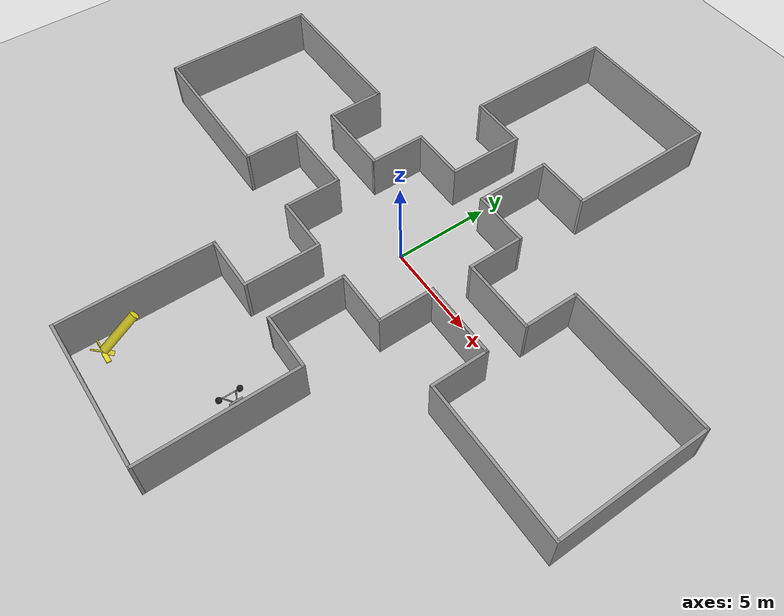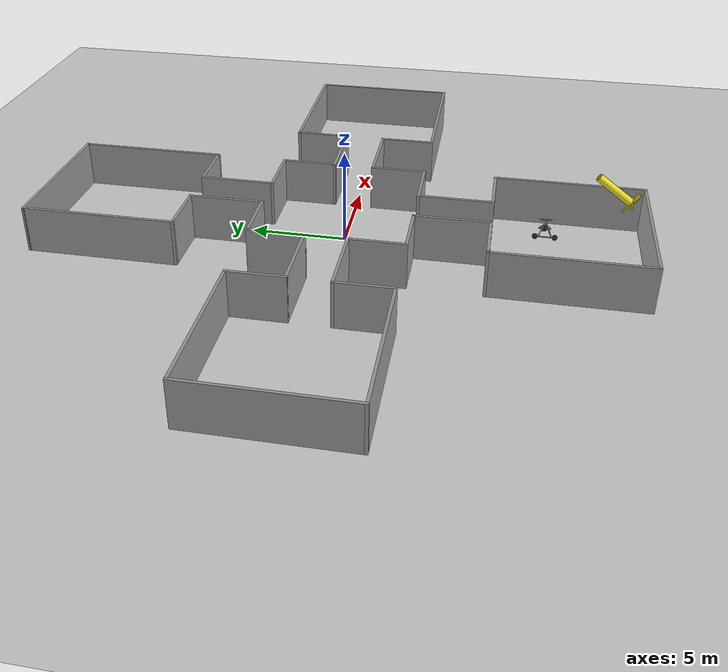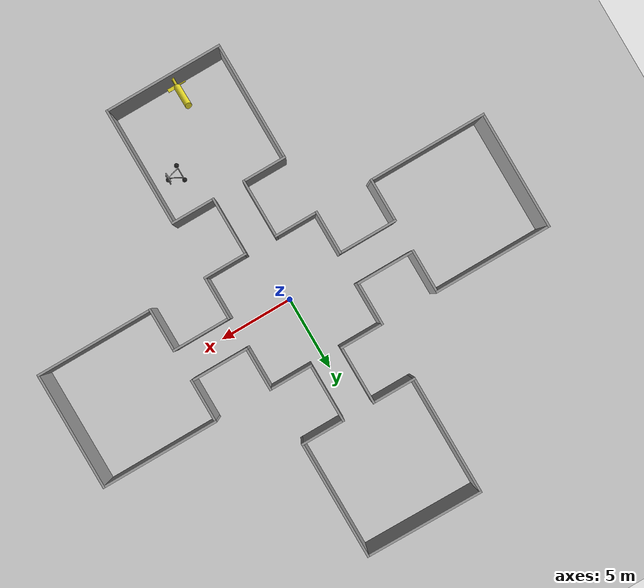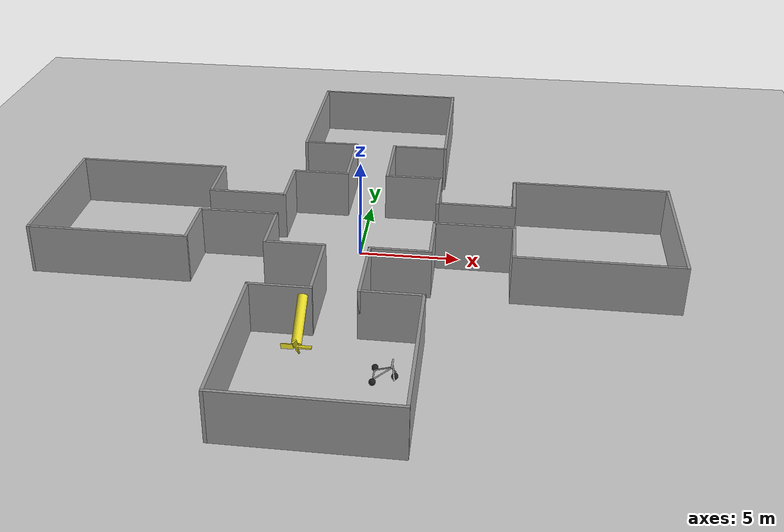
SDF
<sdf version="1.7">
 <world name="default">
  <light name="sun" type="directional">
   <pose>0 0 10 0 -0 0</pose>
   <diffuse>0.8 0.8 0.8 1</diffuse>
   <specular>0.2 0.2 0.2 1</specular>
   <attenuation>
    <range>1000</range>
    <constant>0.9</constant>
    <linear>0.01</linear>
    <quadratic>0.001</quadratic>
   </attenuation>
   <direction>-0.5 0.1 -0.9</direction>
   <spot><inner_angle>0</inner_angle><outer_angle>0</outer_angle><falloff>0</falloff></spot>
  </light>
  <model name="ground_plane">
   <static>1</static>
   <link name="link">
    <collision name="collision">
     <geometry><plane><normal>0 0 1</normal><size>100 100</size></plane></geometry>
     <surface>
      <contact><collide_bitmask>65535</collide_bitmask></contact>
      <friction><ode><mu>100</mu><mu2>50</mu2></ode></friction>
     </surface>
    </collision>
    <visual name="visual">
     <cast_shadows>0</cast_shadows>
     <geometry><plane><normal>0 0 1</normal><size>100 100</size></plane></geometry>
     <material>
      <script><uri>file://media/materials/scripts/gazebo.material</uri><name>Gazebo/Grey</name></script>
     </material>
    </visual>
   </link>
  </model>
  <gravity>0 0 -9.8</gravity>
  <magnetic_field>6e-06 2.3e-05 -4.2e-05</magnetic_field>
  <atmosphere type="adiabatic"/>
  <physics type="ode">
   <max_step_size>0.001</max_step_size>
   <real_time_factor>1</real_time_factor>
   <real_time_update_rate>1000</real_time_update_rate>
  </physics>
  <scene><ambient>0.4 0.4 0.4 1</ambient><background>0.7 0.7 0.7 1</background><shadows>1</shadows></scene>
  <audio><device>default</device></audio>
  <spherical_coordinates>
   <surface_model>EARTH_WGS84</surface_model>
   <latitude_deg>0</latitude_deg>
   <longitude_deg>0</longitude_deg>
   <elevation>0</elevation>
   <heading_deg>0</heading_deg>
  </spherical_coordinates>
  <model name="hallway_house">
   <pose>-0.159329 0.227724 0 0 -0 0</pose>
   <link name="Wall_238">
    <collision name="Wall_238_Collision">
     <geometry><box><size>3 0.15 2.5</size></box></geometry>
     <pose>0 0 1.25 0 -0 0</pose>
    </collision>
    <visual name="Wall_238_Visual">
     <pose>0 0 1.25 0 -0 0</pose>
     <geometry><box><size>3 0.15 2.5</size></box></geometry>
     <material>
      <script><uri>file://media/materials/scripts/gazebo.material</uri><name>Gazebo/Grey</name></script>
      <ambient>1 1 1 1</ambient>
     </material>
     <meta><layer>0</layer></meta>
    </visual>
    <pose>2.5 -3.97159 0 0 -0 3.14159</pose>
   </link>
   <link name="Wall_239">
    <collision name="Wall_239_Collision">
     <geometry><box><size>4 0.15 2.5</size></box></geometry>
     <pose>0 0 1.25 0 -0 0</pose>
    </collision>
    <visual name="Wall_239_Visual">
     <pose>0 0 1.25 0 -0 0</pose>
     <geometry><box><size>4 0.15 2.5</size></box></geometry>
     <material>
      <script><uri>file://media/materials/scripts/gazebo.material</uri><name>Gazebo/Grey</name></script>
      <ambient>1 1 1 1</ambient>
     </material>
     <meta><layer>0</layer></meta>
    </visual>
    <pose>1.075 -5.89658 0 0 -0 -1.5708</pose>
   </link>
   <link name="Wall_240">
    <collision name="Wall_240_Collision">
     <geometry><box><size>3 0.15 2.5</size></box></geometry>
     <pose>0 0 1.25 0 -0 0</pose>
    </collision>
    <visual name="Wall_240_Visual">
     <pose>0 0 1.25 0 -0 0</pose>
     <geometry><box><size>3 0.15 2.5</size></box></geometry>
     <material>
      <script><uri>file://media/materials/scripts/gazebo.material</uri><name>Gazebo/Grey</name></script>
      <ambient>1 1 1 1</ambient>
     </material>
     <meta><layer>0</layer></meta>
    </visual>
    <pose>2.5 -7.82158 0 0 -0 0</pose>
   </link>
   <link name="Wall_241">
    <collision name="Wall_241_Collision">
     <geometry><box><size>8 0.15 2.5</size></box></geometry>
     <pose>0 0 1.25 0 -0 0</pose>
    </collision>
    <visual name="Wall_241_Visual">
     <pose>0 0 1.25 0 -0 0</pose>
     <geometry><box><size>8 0.15 2.5</size></box></geometry>
     <material>
      <script><uri>file://media/materials/scripts/gazebo.material</uri><name>Gazebo/Grey</name></script>
      <ambient>1 1 1 1</ambient>
     </material>
     <meta><layer>0</layer></meta>
    </visual>
    <pose>3.925 -11.7466 0 0 -0 -1.5708</pose>
   </link>
   <link name="Wall_250">
    <collision name="Wall_250_Collision">
     <geometry><box><size>3 0.15 2.5</size></box></geometry>
     <pose>0 0 1.25 0 -0 0</pose>
    </collision>
    <visual name="Wall_250_Visual">
     <pose>0 0 1.25 0 -0 0</pose>
     <geometry><box><size>3 0.15 2.5</size></box></geometry>
     <material>
      <script><uri>file://media/materials/scripts/gazebo.material</uri><name>Gazebo/Grey</name></script>
      <ambient>1 1 1 1</ambient>
     </material>
     <meta><layer>0</layer></meta>
    </visual>
    <pose>3.925 -2.54658 0 0 -0 1.5708</pose>
   </link>
   <link name="Wall_251">
    <collision name="Wall_251_Collision">
     <geometry><box><size>4 0.15 2.5</size></box></geometry>
     <pose>0 0 1.25 0 -0 0</pose>
    </collision>
    <visual name="Wall_251_Visual">
     <pose>0 0 1.25 0 -0 0</pose>
     <geometry><box><size>4 0.15 2.5</size></box></geometry>
     <material>
      <script><uri>file://media/materials/scripts/gazebo.material</uri><name>Gazebo/Grey</name></script>
      <ambient>1 1 1 1</ambient>
     </material>
     <meta><layer>0</layer></meta>
    </visual>
    <pose>5.85 -1.12159 0 0 -0 0</pose>
   </link>
   <link name="Wall_252">
    <collision name="Wall_252_Collision">
     <geometry><box><size>3 0.15 2.5</size></box></geometry>
     <pose>0 0 1.25 0 -0 0</pose>
    </collision>
    <visual name="Wall_252_Visual">
     <pose>0 0 1.25 0 -0 0</pose>
     <geometry><box><size>3 0.15 2.5</size></box></geometry>
     <material>
      <script><uri>file://media/materials/scripts/gazebo.material</uri><name>Gazebo/Grey</name></script>
      <ambient>1 1 1 1</ambient>
     </material>
     <meta><layer>0</layer></meta>
    </visual>
    <pose>7.775 -2.54658 0 0 -0 -1.5708</pose>
   </link>
   <link name="Wall_253">
    <collision name="Wall_253_Collision">
     <geometry><box><size>8 0.15 2.5</size></box></geometry>
     <pose>0 0 1.25 0 -0 0</pose>
    </collision>
    <visual name="Wall_253_Visual">
     <pose>0 0 1.25 0 -0 0</pose>
     <geometry><box><size>8 0.15 2.5</size></box></geometry>
     <material>
      <script><uri>file://media/materials/scripts/gazebo.material</uri><name>Gazebo/Grey</name></script>
      <ambient>1 1 1 1</ambient>
     </material>
     <meta><layer>0</layer></meta>
    </visual>
    <pose>11.7 -3.97159 0 0 -0 0</pose>
   </link>
   <link name="Wall_254">
    <collision name="Wall_254_Collision">
     <geometry><box><size>8 0.15 2.5</size></box></geometry>
     <pose>0 0 1.25 0 -0 0</pose>
    </collision>
    <visual name="Wall_254_Visual">
     <pose>0 0 1.25 0 -0 0</pose>
     <geometry><box><size>8 0.15 2.5</size></box></geometry>
     <material>
      <script><uri>file://media/materials/scripts/gazebo.material</uri><name>Gazebo/Grey</name></script>
      <ambient>1 1 1 1</ambient>
     </material>
     <meta><layer>0</layer></meta>
    </visual>
    <pose>15.625 -0.046585 0 0 -0 1.5708</pose>
   </link>
   <link name="Wall_255">
    <collision name="Wall_255_Collision">
     <geometry><box><size>8 0.15 2.5</size></box></geometry>
     <pose>0 0 1.25 0 -0 0</pose>
    </collision>
    <visual name="Wall_255_Visual">
     <pose>0 0 1.25 0 -0 0</pose>
     <geometry><box><size>8 0.15 2.5</size></box></geometry>
     <material>
      <script><uri>file://media/materials/scripts/gazebo.material</uri><name>Gazebo/Grey</name></script>
      <ambient>1 1 1 1</ambient>
     </material>
     <meta><layer>0</layer></meta>
    </visual>
    <pose>11.7 3.87841 0 0 -0 3.14159</pose>
   </link>
   <link name="Wall_256">
    <collision name="Wall_256_Collision">
     <geometry><box><size>3 0.15 2.5</size></box></geometry>
     <pose>0 0 1.25 0 -0 0</pose>
    </collision>
    <visual name="Wall_256_Visual">
     <pose>0 0 1.25 0 -0 0</pose>
     <geometry><box><size>3 0.15 2.5</size></box></geometry>
     <material>
      <script><uri>file://media/materials/scripts/gazebo.material</uri><name>Gazebo/Grey</name></script>
      <ambient>1 1 1 1</ambient>
     </material>
     <meta><layer>0</layer></meta>
    </visual>
    <pose>7.775 2.45342 0 0 -0 -1.5708</pose>
   </link>
   <link name="Wall_257">
    <collision name="Wall_257_Collision">
     <geometry><box><size>4 0.15 2.5</size></box></geometry>
     <pose>0 0 1.25 0 -0 0</pose>
    </collision>
    <visual name="Wall_257_Visual">
     <pose>0 0 1.25 0 -0 0</pose>
     <geometry><box><size>4 0.15 2.5</size></box></geometry>
     <material>
      <script><uri>file://media/materials/scripts/gazebo.material</uri><name>Gazebo/Grey</name></script>
      <ambient>1 1 1 1</ambient>
     </material>
     <meta><layer>0</layer></meta>
    </visual>
    <pose>5.85 1.02842 0 0 -0 3.14159</pose>
   </link>
   <link name="Wall_258">
    <collision name="Wall_258_Collision">
     <geometry><box><size>3 0.15 2.5</size></box></geometry>
     <pose>0 0 1.25 0 -0 0</pose>
    </collision>
    <visual name="Wall_258_Visual">
     <pose>0 0 1.25 0 -0 0</pose>
     <geometry><box><size>3 0.15 2.5</size></box></geometry>
     <material>
      <script><uri>file://media/materials/scripts/gazebo.material</uri><name>Gazebo/Grey</name></script>
      <ambient>1 1 1 1</ambient>
     </material>
     <meta><layer>0</layer></meta>
    </visual>
    <pose>3.925 2.45342 0 0 -0 1.5708</pose>
   </link>
   <link name="Wall_259">
    <collision name="Wall_259_Collision">
     <geometry><box><size>3 0.15 2.5</size></box></geometry>
     <pose>0 0 1.25 0 -0 0</pose>
    </collision>
    <visual name="Wall_259_Visual">
     <pose>0 0 1.25 0 -0 0</pose>
     <geometry><box><size>3 0.15 2.5</size></box></geometry>
     <material>
      <script><uri>file://media/materials/scripts/gazebo.material</uri><name>Gazebo/Grey</name></script>
      <ambient>1 1 1 1</ambient>
     </material>
     <meta><layer>0</layer></meta>
    </visual>
    <pose>2.5 3.87841 0 0 -0 3.14159</pose>
   </link>
   <link name="Wall_260">
    <collision name="Wall_260_Collision">
     <geometry><box><size>4 0.15 2.5</size></box></geometry>
     <pose>0 0 1.25 0 -0 0</pose>
    </collision>
    <visual name="Wall_260_Visual">
     <pose>0 0 1.25 0 -0 0</pose>
     <geometry><box><size>4 0.15 2.5</size></box></geometry>
     <material>
      <script><uri>file://media/materials/scripts/gazebo.material</uri><name>Gazebo/Grey</name></script>
      <ambient>1 1 1 1</ambient>
     </material>
     <meta><layer>0</layer></meta>
    </visual>
    <pose>1.075 5.80342 0 0 -0 1.5708</pose>
   </link>
   <link name="Wall_261">
    <collision name="Wall_261_Collision">
     <geometry><box><size>3 0.15 2.5</size></box></geometry>
     <pose>0 0 1.25 0 -0 0</pose>
    </collision>
    <visual name="Wall_261_Visual">
     <pose>0 0 1.25 0 -0 0</pose>
     <geometry><box><size>3 0.15 2.5</size></box></geometry>
     <material>
      <script><uri>file://media/materials/scripts/gazebo.material</uri><name>Gazebo/Grey</name></script>
      <ambient>1 1 1 1</ambient>
     </material>
     <meta><layer>0</layer></meta>
    </visual>
    <pose>2.5 7.72842 0 0 -0 0</pose>
   </link>
   <link name="Wall_262">
    <collision name="Wall_262_Collision">
     <geometry><box><size>8 0.15 2.5</size></box></geometry>
     <pose>0 0 1.25 0 -0 0</pose>
    </collision>
    <visual name="Wall_262_Visual">
     <pose>0 0 1.25 0 -0 0</pose>
     <geometry><box><size>8 0.15 2.5</size></box></geometry>
     <material>
      <script><uri>file://media/materials/scripts/gazebo.material</uri><name>Gazebo/Grey</name></script>
      <ambient>1 1 1 1</ambient>
     </material>
     <meta><layer>0</layer></meta>
    </visual>
    <pose>3.925 11.6534 0 0 -0 1.5708</pose>
   </link>
   <link name="Wall_263">
    <collision name="Wall_263_Collision">
     <geometry><box><size>8 0.15 2.5</size></box></geometry>
     <pose>0 0 1.25 0 -0 0</pose>
    </collision>
    <visual name="Wall_263_Visual">
     <pose>0 0 1.25 0 -0 0</pose>
     <geometry><box><size>8 0.15 2.5</size></box></geometry>
     <material>
      <script><uri>file://media/materials/scripts/gazebo.material</uri><name>Gazebo/Grey</name></script>
      <ambient>1 1 1 1</ambient>
     </material>
     <meta><layer>0</layer></meta>
    </visual>
    <pose>0.000271 15.6246 0 0 -0 3.12983</pose>
   </link>
   <link name="Wall_265">
    <collision name="Wall_265_Collision">
     <geometry><box><size>8 0.15 2.5</size></box></geometry>
     <pose>0 0 1.25 0 -0 0</pose>
    </collision>
    <visual name="Wall_265_Visual">
     <pose>0 0 1.25 0 -0 0</pose>
     <geometry><box><size>8 0.15 2.5</size></box></geometry>
     <material>
      <script><uri>file://media/materials/scripts/gazebo.material</uri><name>Gazebo/Grey</name></script>
      <ambient>1 1 1 1</ambient>
     </material>
     <meta><layer>0</layer></meta>
    </visual>
    <pose>0 -15.6716 0 0 -0 3.14159</pose>
   </link>
   <link name="Wall_271">
    <collision name="Wall_271_Collision">
     <geometry><box><size>3 0.15 2.5</size></box></geometry>
     <pose>0 0 1.25 0 -0 0</pose>
    </collision>
    <visual name="Wall_271_Visual">
     <pose>0 0 1.25 0 -0 0</pose>
     <geometry><box><size>3 0.15 2.5</size></box></geometry>
     <material>
      <script><uri>file://media/materials/scripts/gazebo.material</uri><name>Gazebo/Grey</name></script>
      <ambient>1 1 1 1</ambient>
     </material>
     <meta><layer>0</layer></meta>
    </visual>
    <pose>-3.925 -2.54658 0 0 -0 -1.5708</pose>
   </link>
   <link name="Wall_272">
    <collision name="Wall_272_Collision">
     <geometry><box><size>3 0.15 2.5</size></box></geometry>
     <pose>0 0 1.25 0 -0 0</pose>
    </collision>
    <visual name="Wall_272_Visual">
     <pose>0 0 1.25 0 -0 0</pose>
     <geometry><box><size>3 0.15 2.5</size></box></geometry>
     <material>
      <script><uri>file://media/materials/scripts/gazebo.material</uri><name>Gazebo/Grey</name></script>
      <ambient>1 1 1 1</ambient>
     </material>
     <meta><layer>0</layer></meta>
    </visual>
    <pose>-2.5 -3.97159 0 0 -0 0</pose>
   </link>
   <link name="Wall_273">
    <collision name="Wall_273_Collision">
     <geometry><box><size>4 0.15 2.5</size></box></geometry>
     <pose>0 0 1.25 0 -0 0</pose>
    </collision>
    <visual name="Wall_273_Visual">
     <pose>0 0 1.25 0 -0 0</pose>
     <geometry><box><size>4 0.15 2.5</size></box></geometry>
     <material>
      <script><uri>file://media/materials/scripts/gazebo.material</uri><name>Gazebo/Grey</name></script>
      <ambient>1 1 1 1</ambient>
     </material>
     <meta><layer>0</layer></meta>
    </visual>
    <pose>-1.075 -5.89658 0 0 -0 -1.5708</pose>
   </link>
   <link name="Wall_274">
    <collision name="Wall_274_Collision">
     <geometry><box><size>3 0.15 2.5</size></box></geometry>
     <pose>0 0 1.25 0 -0 0</pose>
    </collision>
    <visual name="Wall_274_Visual">
     <pose>0 0 1.25 0 -0 0</pose>
     <geometry><box><size>3 0.15 2.5</size></box></geometry>
     <material>
      <script><uri>file://media/materials/scripts/gazebo.material</uri><name>Gazebo/Grey</name></script>
      <ambient>1 1 1 1</ambient>
     </material>
     <meta><layer>0</layer></meta>
    </visual>
    <pose>-2.5 -7.82158 0 0 -0 3.14159</pose>
   </link>
   <link name="Wall_275">
    <collision name="Wall_275_Collision">
     <geometry><box><size>8 0.15 2.5</size></box></geometry>
     <pose>0 0 1.25 0 -0 0</pose>
    </collision>
    <visual name="Wall_275_Visual">
     <pose>0 0 1.25 0 -0 0</pose>
     <geometry><box><size>8 0.15 2.5</size></box></geometry>
     <material>
      <script><uri>file://media/materials/scripts/gazebo.material</uri><name>Gazebo/Grey</name></script>
      <ambient>1 1 1 1</ambient>
     </material>
     <meta><layer>0</layer></meta>
    </visual>
    <pose>-3.925 -11.7466 0 0 -0 -1.5708</pose>
   </link>
   <link name="Wall_281">
    <collision name="Wall_281_Collision">
     <geometry><box><size>4 0.15 2.5</size></box></geometry>
     <pose>0 0 1.25 0 -0 0</pose>
    </collision>
    <visual name="Wall_281_Visual">
     <pose>0 0 1.25 0 -0 0</pose>
     <geometry><box><size>4 0.15 2.5</size></box></geometry>
     <material>
      <script><uri>file://media/materials/scripts/gazebo.material</uri><name>Gazebo/Grey</name></script>
      <ambient>1 1 1 1</ambient>
     </material>
     <meta><layer>0</layer></meta>
    </visual>
    <pose>-5.85 -1.12159 0 0 -0 3.14159</pose>
   </link>
   <link name="Wall_282">
    <collision name="Wall_282_Collision">
     <geometry><box><size>3 0.15 2.5</size></box></geometry>
     <pose>0 0 1.25 0 -0 0</pose>
    </collision>
    <visual name="Wall_282_Visual">
     <pose>0 0 1.25 0 -0 0</pose>
     <geometry><box><size>3 0.15 2.5</size></box></geometry>
     <material>
      <script><uri>file://media/materials/scripts/gazebo.material</uri><name>Gazebo/Grey</name></script>
      <ambient>1 1 1 1</ambient>
     </material>
     <meta><layer>0</layer></meta>
    </visual>
    <pose>-7.775 -2.54658 0 0 -0 -1.5708</pose>
   </link>
   <link name="Wall_283">
    <collision name="Wall_283_Collision">
     <geometry><box><size>8 0.15 2.5</size></box></geometry>
     <pose>0 0 1.25 0 -0 0</pose>
    </collision>
    <visual name="Wall_283_Visual">
     <pose>0 0 1.25 0 -0 0</pose>
     <geometry><box><size>8 0.15 2.5</size></box></geometry>
     <material>
      <script><uri>file://media/materials/scripts/gazebo.material</uri><name>Gazebo/Grey</name></script>
      <ambient>1 1 1 1</ambient>
     </material>
     <meta><layer>0</layer></meta>
    </visual>
    <pose>-11.7 -3.97159 0 0 -0 3.14159</pose>
   </link>
   <link name="Wall_284">
    <collision name="Wall_284_Collision">
     <geometry><box><size>8 0.15 2.5</size></box></geometry>
     <pose>0 0 1.25 0 -0 0</pose>
    </collision>
    <visual name="Wall_284_Visual">
     <pose>0 0 1.25 0 -0 0</pose>
     <geometry><box><size>8 0.15 2.5</size></box></geometry>
     <material>
      <script><uri>file://media/materials/scripts/gazebo.material</uri><name>Gazebo/Grey</name></script>
      <ambient>1 1 1 1</ambient>
     </material>
     <meta><layer>0</layer></meta>
    </visual>
    <pose>-15.625 -0.046585 0 0 -0 1.5708</pose>
   </link>
   <link name="Wall_285">
    <collision name="Wall_285_Collision">
     <geometry><box><size>8 0.15 2.5</size></box></geometry>
     <pose>0 0 1.25 0 -0 0</pose>
    </collision>
    <visual name="Wall_285_Visual">
     <pose>0 0 1.25 0 -0 0</pose>
     <geometry><box><size>8 0.15 2.5</size></box></geometry>
     <material>
      <script><uri>file://media/materials/scripts/gazebo.material</uri><name>Gazebo/Grey</name></script>
      <ambient>1 1 1 1</ambient>
     </material>
     <meta><layer>0</layer></meta>
    </visual>
    <pose>-11.7 3.87841 0 0 -0 0</pose>
   </link>
   <link name="Wall_286">
    <collision name="Wall_286_Collision">
     <geometry><box><size>3 0.15 2.5</size></box></geometry>
     <pose>0 0 1.25 0 -0 0</pose>
    </collision>
    <visual name="Wall_286_Visual">
     <pose>0 0 1.25 0 -0 0</pose>
     <geometry><box><size>3 0.15 2.5</size></box></geometry>
     <material>
      <script><uri>file://media/materials/scripts/gazebo.material</uri><name>Gazebo/Grey</name></script>
      <ambient>1 1 1 1</ambient>
     </material>
     <meta><layer>0</layer></meta>
    </visual>
    <pose>-7.775 2.45342 0 0 -0 -1.5708</pose>
   </link>
   <link name="Wall_287">
    <collision name="Wall_287_Collision">
     <geometry><box><size>4 0.15 2.5</size></box></geometry>
     <pose>0 0 1.25 0 -0 0</pose>
    </collision>
    <visual name="Wall_287_Visual">
     <pose>0 0 1.25 0 -0 0</pose>
     <geometry><box><size>4 0.15 2.5</size></box></geometry>
     <material>
      <script><uri>file://media/materials/scripts/gazebo.material</uri><name>Gazebo/Grey</name></script>
      <ambient>1 1 1 1</ambient>
     </material>
     <meta><layer>0</layer></meta>
    </visual>
    <pose>-5.85 1.02842 0 0 -0 0</pose>
   </link>
   <link name="Wall_288">
    <collision name="Wall_288_Collision">
     <geometry><box><size>3 0.15 2.5</size></box></geometry>
     <pose>0 0 1.25 0 -0 0</pose>
    </collision>
    <visual name="Wall_288_Visual">
     <pose>0 0 1.25 0 -0 0</pose>
     <geometry><box><size>3 0.15 2.5</size></box></geometry>
     <material>
      <script><uri>file://media/materials/scripts/gazebo.material</uri><name>Gazebo/Grey</name></script>
      <ambient>1 1 1 1</ambient>
     </material>
     <meta><layer>0</layer></meta>
    </visual>
    <pose>-3.925 2.45342 0 0 -0 1.5708</pose>
   </link>
   <link name="Wall_289">
    <collision name="Wall_289_Collision">
     <geometry><box><size>3 0.15 2.5</size></box></geometry>
     <pose>0 0 1.25 0 -0 0</pose>
    </collision>
    <visual name="Wall_289_Visual">
     <pose>0 0 1.25 0 -0 0</pose>
     <geometry><box><size>3 0.15 2.5</size></box></geometry>
     <material>
      <script><uri>file://media/materials/scripts/gazebo.material</uri><name>Gazebo/Grey</name></script>
      <ambient>1 1 1 1</ambient>
     </material>
     <meta><layer>0</layer></meta>
    </visual>
    <pose>-2.5 3.87841 0 0 -0 0</pose>
   </link>
   <link name="Wall_290">
    <collision name="Wall_290_Collision">
     <geometry><box><size>4 0.15 2.5</size></box></geometry>
     <pose>0 0 1.25 0 -0 0</pose>
    </collision>
    <visual name="Wall_290_Visual">
     <pose>0 0 1.25 0 -0 0</pose>
     <geometry><box><size>4 0.15 2.5</size></box></geometry>
     <material>
      <script><uri>file://media/materials/scripts/gazebo.material</uri><name>Gazebo/Grey</name></script>
      <ambient>1 1 1 1</ambient>
     </material>
     <meta><layer>0</layer></meta>
    </visual>
    <pose>-1.075 5.80342 0 0 -0 1.5708</pose>
   </link>
   <link name="Wall_291">
    <collision name="Wall_291_Collision">
     <geometry><box><size>3 0.15 2.5</size></box></geometry>
     <pose>0 0 1.25 0 -0 0</pose>
    </collision>
    <visual name="Wall_291_Visual">
     <pose>0 0 1.25 0 -0 0</pose>
     <geometry><box><size>3 0.15 2.5</size></box></geometry>
     <material>
      <script><uri>file://media/materials/scripts/gazebo.material</uri><name>Gazebo/Grey</name></script>
      <ambient>1 1 1 1</ambient>
     </material>
     <meta><layer>0</layer></meta>
    </visual>
    <pose>-2.5 7.72842 0 0 -0 3.14159</pose>
   </link>
   <link name="Wall_292">
    <collision name="Wall_292_Collision">
     <geometry><box><size>8 0.15 2.5</size></box></geometry>
     <pose>0 0 1.25 0 -0 0</pose>
    </collision>
    <visual name="Wall_292_Visual">
     <pose>0 0 1.25 0 -0 0</pose>
     <geometry><box><size>8 0.15 2.5</size></box></geometry>
     <material>
      <script><uri>file://media/materials/scripts/gazebo.material</uri><name>Gazebo/Grey</name></script>
      <ambient>1 1 1 1</ambient>
     </material>
     <meta><layer>0</layer></meta>
    </visual>
    <pose>-3.925 11.6534 0 0 -0 1.5708</pose>
   </link>
   <static>1</static>
  </model>
  <model name="trisphere_cycle">
   <link name="frame">
    <pose>-0.408559 0 0.385023 0 -0.522021 0</pose>
    <inertial>
     <mass>10</mass>
     <inertia><ixx>0.228</ixx><iyy>0.743521</iyy><izz>0.965521</izz><ixy>0</ixy><ixz>0</ixz><iyz>0</iyz></inertia>
    </inertial>
    <collision name="axle_collision">
     <pose>-0.471335 0 0 1.5708 -0 0</pose>
     <geometry><cylinder><length>1.03923</length><radius>0.03</radius></cylinder></geometry>
    </collision>
    <visual name="axle_visual">
     <pose>-0.471335 0 0 1.5708 -0 0</pose>
     <geometry><cylinder><length>1.03923</length><radius>0.03</radius></cylinder></geometry>
     <material>
      <script><uri>file://media/materials/scripts/gazebo.material</uri><name>Gazebo/Grey</name></script>
     </material>
    </visual>
    <collision name="frame_left_collision">
     <pose>0 0.171552 0 -2.79253 1.57079 3.14159</pose>
     <geometry><cylinder><length>1.00317</length><radius>0.03</radius></cylinder></geometry>
    </collision>
    <visual name="frame_left_visual">
     <pose>0 0.171552 0 -2.79253 1.57079 3.14159</pose>
     <geometry><cylinder><length>1.00317</length><radius>0.03</radius></cylinder></geometry>
     <material>
      <script><uri>file://media/materials/scripts/gazebo.material</uri><name>Gazebo/Grey</name></script>
     </material>
    </visual>
    <collision name="frame_right_collision">
     <pose>0 -0.171552 0 2.79253 1.57079 -3.14159</pose>
     <geometry><cylinder><length>1.00317</length><radius>0.03</radius></cylinder></geometry>
    </collision>
    <visual name="frame_right_visual">
     <pose>0 -0.171552 0 2.79253 1.57079 -3.14159</pose>
     <geometry><cylinder><length>1.00317</length><radius>0.03</radius></cylinder></geometry>
     <material>
      <script><uri>file://media/materials/scripts/gazebo.material</uri><name>Gazebo/Grey</name></script>
     </material>
    </visual>
   </link>
   <link name="fork">
    <pose>0.041441 0 0.385023 0 -0.174533 0</pose>
    <inertial>
     <mass>3</mass>
     <inertia>
      <ixx>0.158203</ixx>
      <iyy>0.0583594</iyy>
      <izz>0.102656</izz>
      <ixy>0</ixy>
      <ixz>0</ixz>
      <iyz>0</iyz>
     </inertia>
    </inertial>
    <collision name="handlebars_collision">
     <pose>0 0 0.397748 1.5708 -0 0</pose>
     <geometry><cylinder><length>0.636396</length><radius>0.0375</radius></cylinder></geometry>
    </collision>
    <visual name="handlebars_visual">
     <pose>0 0 0.397748 1.5708 -0 0</pose>
     <geometry><cylinder><length>0.636396</length><radius>0.0375</radius></cylinder></geometry>
     <material>
      <script><uri>file://media/materials/scripts/gazebo.material</uri><name>Gazebo/Grey</name></script>
     </material>
    </visual>
    <collision name="headtube_collision">
     <pose>0 0 0.238649 0 -0 0</pose>
     <geometry><cylinder><length>0.318198</length><radius>0.0375</radius></cylinder></geometry>
    </collision>
    <visual name="headtube_visual">
     <pose>0 0 0.238649 0 -0 0</pose>
     <geometry><cylinder><length>0.318198</length><radius>0.0375</radius></cylinder></geometry>
     <material>
      <script><uri>file://media/materials/scripts/gazebo.material</uri><name>Gazebo/Grey</name></script>
     </material>
    </visual>
    <collision name="spindle_collision">
     <pose>0 0 -0.238649 1.5708 -0 0</pose>
     <geometry><cylinder><length>0.636396</length><radius>0.015</radius></cylinder></geometry>
    </collision>
    <visual name="spindle_visual">
     <pose>0 0 -0.238649 1.5708 -0 0</pose>
     <geometry><cylinder><length>0.636396</length><radius>0.015</radius></cylinder></geometry>
     <material>
      <script><uri>file://media/materials/scripts/gazebo.material</uri><name>Gazebo/Grey</name></script>
     </material>
    </visual>
    <collision name="fork_left_collision">
     <pose>0 0.159099 -0.07955 0.785398 -0 0</pose>
     <geometry><cylinder><length>0.45</length><radius>0.0375</radius></cylinder></geometry>
    </collision>
    <visual name="fork_left_visual">
     <pose>0 0.159099 -0.07955 0.785398 -0 0</pose>
     <geometry><cylinder><length>0.45</length><radius>0.0375</radius></cylinder></geometry>
     <material>
      <script><uri>file://media/materials/scripts/gazebo.material</uri><name>Gazebo/Grey</name></script>
     </material>
    </visual>
    <collision name="fork_right_collision">
     <pose>0 -0.159099 -0.07955 -0.785398 0 0</pose>
     <geometry><cylinder><length>0.45</length><radius>0.0375</radius></cylinder></geometry>
    </collision>
    <visual name="fork_right_visual">
     <pose>0 -0.159099 -0.07955 -0.785398 0 0</pose>
     <geometry><cylinder><length>0.45</length><radius>0.0375</radius></cylinder></geometry>
     <material>
      <script><uri>file://media/materials/scripts/gazebo.material</uri><name>Gazebo/Grey</name></script>
     </material>
    </visual>
   </link>
   <link name="wheel_front">
    <pose>0.082882 0 0.15 0 -0 0</pose>
    <inertial>
     <mass>0.5</mass>
     <inertia><ixx>0.0045</ixx><iyy>0.0045</iyy><izz>0.0045</izz><ixy>0</ixy><ixz>0</ixz><iyz>0</iyz></inertia>
    </inertial>
    <collision name="collision">
     <geometry><sphere><radius>0.15</radius></sphere></geometry>
     <surface><contact><ode><kp>1e+08</kp><kd>1</kd><min_depth>0.0005</min_depth></ode></contact></surface>
    </collision>
    <visual name="visual">
     <geometry><sphere><radius>0.15</radius></sphere></geometry>
     <material>
      <script><uri>file://media/materials/scripts/gazebo.material</uri><name>Gazebo/Black</name></script>
     </material>
    </visual>
   </link>
   <joint name="wheel_front_steer" type="revolute">
    <parent>frame</parent>
    <child>fork</child>
    <axis>
     <xyz>0 0 1</xyz>
     <limit><lower>-0.959931</lower><upper>0.959931</upper></limit>
     <dynamics><spring_reference>0</spring_reference><spring_stiffness>0</spring_stiffness></dynamics>
    </axis>
   </joint>
   <joint name="wheel_front_spin" type="revolute">
    <parent>fork</parent>
    <child>wheel_front</child>
    <axis>
     <xyz>0 1 0</xyz>
     <limit><lower>-1e+16</lower><upper>1e+16</upper></limit>
     <dynamics><spring_reference>0</spring_reference><spring_stiffness>0</spring_stiffness></dynamics>
    </axis>
   </joint>
   <link name="wheel_rear_left">
    <pose>-0.817118 0.519615 0.15 0 -0 0</pose>
    <inertial>
     <mass>0.5</mass>
     <inertia><ixx>0.0045</ixx><iyy>0.0045</iyy><izz>0.0045</izz><ixy>0</ixy><ixz>0</ixz><iyz>0</iyz></inertia>
    </inertial>
    <collision name="collision">
     <geometry><sphere><radius>0.15</radius></sphere></geometry>
     <surface><contact><ode><kp>1e+08</kp><kd>1</kd><min_depth>0.0005</min_depth></ode></contact></surface>
    </collision>
    <visual name="visual">
     <geometry><sphere><radius>0.15</radius></sphere></geometry>
     <material>
      <script><uri>file://media/materials/scripts/gazebo.material</uri><name>Gazebo/Black</name></script>
     </material>
    </visual>
   </link>
   <joint name="wheel_rear_left_spin" type="revolute">
    <parent>frame</parent>
    <child>wheel_rear_left</child>
    <axis>
     <xyz>0 1 0</xyz>
     <limit><lower>-1e+16</lower><upper>1e+16</upper></limit>
     <dynamics><spring_reference>0</spring_reference><spring_stiffness>0</spring_stiffness></dynamics>
    </axis>
   </joint>
   <link name="wheel_rear_right">
    <pose>-0.817118 -0.519615 0.15 0 -0 0</pose>
    <inertial>
     <mass>0.5</mass>
     <inertia><ixx>0.0045</ixx><iyy>0.0045</iyy><izz>0.0045</izz><ixy>0</ixy><ixz>0</ixz><iyz>0</iyz></inertia>
    </inertial>
    <collision name="collision">
     <geometry><sphere><radius>0.15</radius></sphere></geometry>
     <surface><contact><ode><kp>1e+08</kp><kd>1</kd><min_depth>0.0005</min_depth></ode></contact></surface>
    </collision>
    <visual name="visual">
     <geometry><sphere><radius>0.15</radius></sphere></geometry>
     <material>
      <script><uri>file://media/materials/scripts/gazebo.material</uri><name>Gazebo/Black</name></script>
     </material>
    </visual>
   </link>
   <joint name="wheel_rear_right_spin" type="revolute">
    <parent>frame</parent>
    <child>wheel_rear_right</child>
    <axis>
     <xyz>0 1 0</xyz>
     <limit><lower>-1e+16</lower><upper>1e+16</upper></limit>
     <dynamics><spring_reference>0</spring_reference><spring_stiffness>0</spring_stiffness></dynamics>
    </axis>
   </joint>
   <pose>2.72126 -10.4524 -0.000501 0 1e-06 -0.001854</pose>
  </model>
  <model name="submarine">
   <pose>-0.634238 -13.3093 4.5595 2.20872 -0 0</pose>
   <link name="body">
    <inertial>
     <mass>251.327</mass>
     <inertia><ixx>86.2891</ixx><ixy>0</ixy><ixz>0</ixz><iyy>86.2891</iyy><iyz>0</iyz><izz>5.02655</izz></inertia>
    </inertial>
    <visual name="body_visual">
     <geometry><cylinder><radius>0.2</radius><length>2</length></cylinder></geometry>
     <material>
      <script><uri>file://media/materials/scripts/gazebo.material</uri><name>Gazebo/Yellow</name></script>
     </material>
    </visual>
    <collision name="body_collision">
     <geometry><cylinder><radius>0.2</radius><length>2</length></cylinder></geometry>
    </collision>
    <visual name="spacer_visual">
     <pose>0 0 1.05855 0 -0 0</pose>
     <geometry><cylinder><radius>0.0933402</radius><length>0.127211</length></cylinder></geometry>
     <material>
      <script><uri>file://media/materials/scripts/gazebo.material</uri><name>Gazebo/Yellow</name></script>
     </material>
    </visual>
   </link>
   <link name="propeller">
    <pose>0 0 1.09 3.14159 -0 0</pose>
    <inertial>
     <mass>21.82</mass>
     <inertia>
      <ixx>0.459994</ixx>
      <ixy>0</ixy>
      <ixz>0</ixz>
      <iyy>0.459994</iyy>
      <iyz>0</iyz>
      <izz>0.909167</izz>
     </inertia>
    </inertial>
    <visual name="blade1_visual">
     <pose>0.34334 0 0 0.785398 -0 0</pose>
     <geometry><box><size>0.5 0.2 0.05455</size></box></geometry>
     <material>
      <script><uri>file://media/materials/scripts/gazebo.material</uri><name>Gazebo/Yellow</name></script>
     </material>
    </visual>
    <collision name="blade1_collision">
     <pose>0.34334 0 0 0.785398 -0 0</pose>
     <geometry><box><size>0.5 0.2 0.05455</size></box></geometry>
    </collision>
    <visual name="blade2_visual">
     <pose>0 0.34334 0 0.785398 0 1.5708</pose>
     <geometry><box><size>0.5 0.2 0.05455</size></box></geometry>
     <material>
      <script><uri>file://media/materials/scripts/gazebo.material</uri><name>Gazebo/Yellow</name></script>
     </material>
    </visual>
    <collision name="blade2_collision">
     <pose>0 0.34334 0 0.785398 0 1.5708</pose>
     <geometry><box><size>0.5 0.2 0.05455</size></box></geometry>
    </collision>
    <visual name="blade3_visual">
     <pose>-0.34334 -0 0 -0.785398 0 0</pose>
     <geometry><box><size>0.5 0.2 0.05455</size></box></geometry>
     <material>
      <script><uri>file://media/materials/scripts/gazebo.material</uri><name>Gazebo/Yellow</name></script>
     </material>
    </visual>
    <collision name="blade3_collision">
     <pose>-0.34334 -0 0 -0.785398 0 0</pose>
     <geometry><box><size>0.5 0.2 0.05455</size></box></geometry>
    </collision>
    <visual name="blade4_visual">
     <pose>-0 -0.34334 0 -0.785398 -0 1.5708</pose>
     <geometry><box><size>0.5 0.2 0.05455</size></box></geometry>
     <material>
      <script><uri>file://media/materials/scripts/gazebo.material</uri><name>Gazebo/Yellow</name></script>
     </material>
    </visual>
    <collision name="blade4_collision">
     <pose>-0 -0.34334 0 -0.785398 -0 1.5708</pose>
     <geometry><box><size>0.5 0.2 0.05455</size></box></geometry>
    </collision>
   </link>
   <joint name="spinning_joint" type="revolute">
    <parent>body</parent>
    <child>propeller</child>
    <axis>
     <xyz expressed_in="__model__">0 0 1</xyz>
     <limit><lower>-1e+12</lower><upper>1e+12</upper><effort>-1</effort><velocity>-1</velocity></limit>
     <dynamics><spring_reference>0</spring_reference><spring_stiffness>0</spring_stiffness></dynamics>
    </axis>
   </joint>
   <plugin name="submarine_propeller_1" filename="libLiftDragPlugin.so">
    <air_density>1000</air_density>
    <cla>1.2535816618911175</cla>
    <cla_stall>-1.4326647564469914</cla_stall>
    <cda>0</cda>
    <cda_stall>1.4326647564469914</cda_stall>
    <alpha_stall>1.396</alpha_stall>
    <a0>0</a0>
    <area>0.27637</area>
    <upward>0 -0.7071067811865476 -0.7071067811865475</upward>
    <forward>0 -0.7071067811865475 0.7071067811865476</forward>
    <link_name>propeller</link_name>
    <cp>0.35 0 0</cp>
   </plugin>
   <plugin name="submarine_propeller_2" filename="libLiftDragPlugin.so">
    <air_density>1000</air_density>
    <cla>1.2535816618911175</cla>
    <cla_stall>-1.4326647564469914</cla_stall>
    <cda>0</cda>
    <cda_stall>1.4326647564469914</cda_stall>
    <alpha_stall>1.396</alpha_stall>
    <a0>0</a0>
    <area>0.27637</area>
    <upward>-0.7071067811865475 0 -0.7071067811865476</upward>
    <forward>-0.7071067811865476 0 0.7071067811865475</forward>
    <link_name>propeller</link_name>
    <cp>0 -0.35 0</cp>
   </plugin>
   <plugin name="submarine_propeller_3" filename="libLiftDragPlugin.so">
    <air_density>1000</air_density>
    <cla>1.2535816618911175</cla>
    <cla_stall>-1.4326647564469914</cla_stall>
    <cda>0</cda>
    <cda_stall>1.4326647564469914</cda_stall>
    <alpha_stall>1.396</alpha_stall>
    <a0>0</a0>
    <area>0.27637</area>
    <upward>0 0.7071067811865475 -0.7071067811865476</upward>
    <forward>0 -0.7071067811865476 -0.7071067811865475</forward>
    <link_name>propeller</link_name>
    <cp>-0.35 0 0</cp>
   </plugin>
   <plugin name="submarine_propeller_4" filename="libLiftDragPlugin.so">
    <air_density>1000</air_density>
    <cla>1.2535816618911175</cla>
    <cla_stall>-1.4326647564469914</cla_stall>
    <cda>0</cda>
    <cda_stall>1.4326647564469914</cda_stall>
    <alpha_stall>1.396</alpha_stall>
    <a0>0</a0>
    <area>0.27637</area>
    <upward>0.7071067811865476 0 -0.7071067811865475</upward>
    <forward>0.7071067811865475 0 0.7071067811865476</forward>
    <link_name>propeller</link_name>
    <cp>0 0.35 0</cp>
   </plugin>
   <plugin name="buoyancy" filename="libBuoyancyPlugin.so"><fluid_density>1000</fluid_density></plugin>
  </model>
  <physics type="ode">
   <real_time_update_rate>1000.0</real_time_update_rate>
   <max_step_size>0.001</max_step_size>
   <real_time_factor>1</real_time_factor>
   <ode>
    <solver>
     <type>quick</type>
     <iters>150</iters>
     <precon_iters>0</precon_iters>
     <sor>1.400000</sor>
     <use_dynamic_moi_rescaling>1</use_dynamic_moi_rescaling>
    </solver>
    <constraints>
     <cfm>0.00001</cfm>
     <erp>0.2</erp>
     <contact_max_correcting_vel>2000.000000</contact_max_correcting_vel>
     <contact_surface_layer>0.01000</contact_surface_layer>
    </constraints>
   </ode>
  </physics>
  <scene><ambient>0.4 0.4 0.4 1</ambient><background>0.7 0.7 0.7 1</background><shadows>true</shadows></scene>
 </world>
</sdf>
